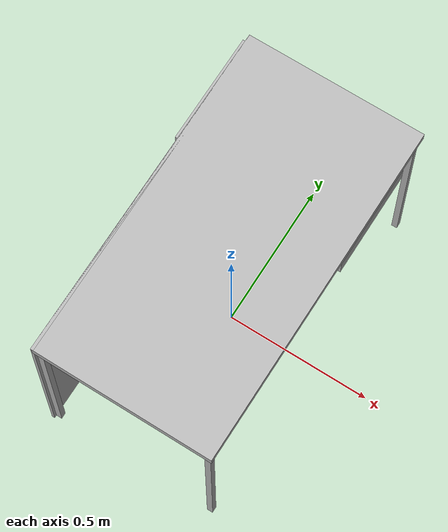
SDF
<?xml version="1.0"?>
<sdf version="1.6">
  <model name="rwc2017/desk">
    <link name="1_link">
      <collision name="1_col">
        <geometry>
          <box>
            <size>0.01 1.15 0.71</size>
          </box>
        </geometry>
      </collision>
      <visual name="1_vis">
        <geometry>
          <box>
            <size>0.01 1.15 0.71</size>
          </box>
        </geometry>
      </visual>
      <pose>-0.295 0 0.355 0 0 0</pose>
    </link>
    <link name="2_link">
      <collision name="2_col">
        <geometry>
          <box>
            <size>0.6 1.15 0.03</size>
          </box>
        </geometry>
      </collision>
      <visual name="2_vis">
        <geometry>
          <box>
            <size>0.6 1.15 0.03</size>
          </box>
        </geometry>
      </visual>
      <pose>0 0 0.695 0 0 0</pose>
    </link>
    <link name="3_link">
      <collision name="3_col">
        <geometry>
          <box>
            <size>0.02 0.02 0.68</size>
          </box>
        </geometry>
      </collision>
      <visual name="3_vis">
        <geometry>
          <box>
            <size>0.02 0.02 0.68</size>
          </box>
        </geometry>
      </visual>
      <pose>-0.28 -0.555 0.34 0 0 0</pose>
    </link>
    <link name="4_link">
      <collision name="4_col">
        <geometry>
          <box>
            <size>0.02 0.02 0.68</size>
          </box>
        </geometry>
      </collision>
      <visual name="4_vis">
        <geometry>
          <box>
            <size>0.02 0.02 0.68</size>
          </box>
        </geometry>
      </visual>
      <pose>0.28 -0.555 0.34 0 0 0</pose>
    </link>
    <link name="5_link">
      <collision name="5_col">
        <geometry>
          <box>
            <size>0.02 0.02 0.68</size>
          </box>
        </geometry>
      </collision>
      <visual name="5_vis">
        <geometry>
          <box>
            <size>0.02 0.02 0.68</size>
          </box>
        </geometry>
      </visual>
      <pose>-0.28 0.555 0.34 0 0 0</pose>
    </link>
    <link name="6_link">
      <collision name="6_col">
        <geometry>
          <box>
            <size>0.02 0.02 0.68</size>
          </box>
        </geometry>
      </collision>
      <visual name="6_vis">
        <geometry>
          <box>
            <size>0.02 0.02 0.68</size>
          </box>
        </geometry>
      </visual>
      <pose>0.28 0.555 0.34 0 0 0</pose>
    </link>
    <link name="7_link">
      <collision name="7_col">
        <geometry>
          <box>
            <size>0.58 0.37 0.3</size>
          </box>
        </geometry>
      </collision>
      <visual name="7_vis">
        <geometry>
          <box>
            <size>0.58 0.37 0.3</size>
          </box>
        </geometry>
      </visual>
      <pose>-0.02 0.37 0.55 0 0 0</pose>
    </link>
    <link name="on_top_of">
      <virtual_volume name="on_top_of_vv">
        <geometry>
          <box>
            <size>0.54 1.09 0.25</size>
          </box>
        </geometry>
        <pose>0.0 0.0 0.855 0 0 0</pose>
      </virtual_volume>
    </link>
    <link name="in_front_of">
      <virtual_volume name="in_front_of_vv">
        <geometry>
          <box>
            <size>0.2 0.95 0.01</size>
          </box>
        </geometry>
        <pose>0.8 0.0 0.005 0 0 0</pose>
      </virtual_volume>
    </link>
    <static>true</static>
  </model>
</sdf>
